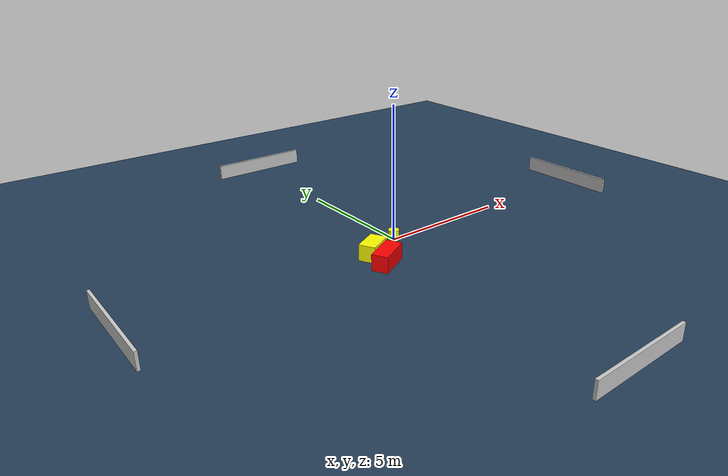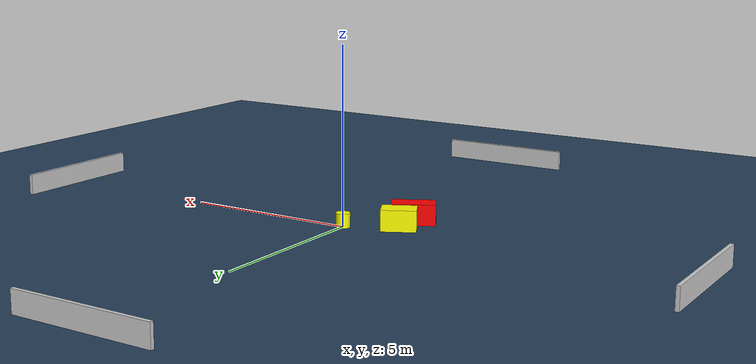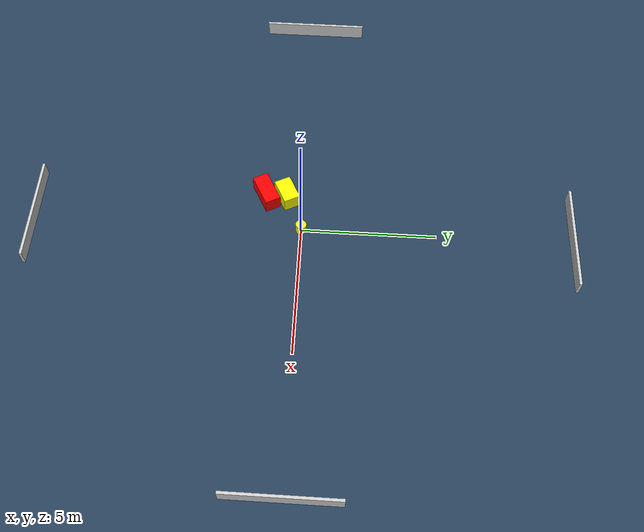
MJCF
<?xml version="1.0" ?>
<mujoco model="generated_environment">
  <option timestep="0.01" integrator="RK4" cone="elliptic"/>
  <default>
    <geom density="1"/>
  </default>
  <asset>
    <texture builtin="gradient" height="3072" name="skybox" rgb1="0.3 0.5 0.7" rgb2="0 0 0" type="skybox" width="512"/>
    <texture builtin="checker" height="300" name="groundplane" rgb1="0.2 0.3 0.4" rgb2="0.1 0.2 0.3" type="2d" width="300"/>
    <material name="groundplane" reflectance="0.2" texrepeat="5 5" texture="groundplane"/>
  </asset>
  <worldbody>
    <light dir="0 0 -1" directional="true" pos="0 0 1.5"/>
    <geom condim="3" friction="0.5 0.005 0.001" material="groundplane" name="floor" pos="0 0 0" size="0 0 0.05" type="plane"/>
    <body name="walls">
      <geom name="wall_1" condim="4" pos="-10.0 0.0 0.3" rgba="0.800000011920929 0.800000011920929 0.800000011920929 1.0" size="0.05 2.0 0.3" type="box"/>
      <geom name="wall_2" condim="4" pos="10.0 0.0 0.3" rgba="0.800000011920929 0.800000011920929 0.800000011920929 1.0" size="0.05 2.0 0.3" type="box"/>
      <geom name="wall_3" condim="4" pos="0.0 -10.0 0.3" rgba="0.800000011920929 0.800000011920929 0.800000011920929 1.0" size="2.0 0.05 0.3" type="box"/>
      <geom name="wall_4" condim="4" pos="0.0 10.0 0.3" rgba="0.800000011920929 0.800000011920929 0.800000011920929 1.0" size="2.0 0.05 0.3" type="box"/>
    </body>
    <body name="robot">
      <joint name="joint_x" type="slide" pos="0 0 0" axis="1 0 0"/>
      <joint name="joint_y" type="slide" pos="0 0 0" axis="0 1 0"/>
      <geom name="robot" type="cylinder" pos="0.0 0.0 0.2" size="0.2 0.2 0.0" mass="5.0" friction="1.0 0.005 0.0001" condim="4" rgba="1.0 1.0 0.0 1.0"/>
    </body>
    <body name="obstacle_1_movable">
      <geom name="obstacle_1_movable" condim="4" pos="-1.4140990233063446 -0.613318179472905 0.3" euler="0 0 117.05070181343196" friction="0.0 0.005 0.001" rgba="1.0 1.0 0.0 1.0" size="0.31024576392705744 0.48835589293265824 0.3" type="box" mass="0.1"/>
      <joint type="free"/>
    </body>
    <body name="obstacle_2_static">
      <geom name="obstacle_2_static" condim="4" pos="-1.422737788835839 -1.3915614191803167 0.3" euler="0 0 28.146628858596294" friction="0.0 0.005 0.001" rgba="1.0 0.0 0.0 1.0" size="0.6162516360180021 0.29567045821265797 0.3" type="box"/>
    </body>
  </worldbody>
  <actuator>
    <motor name="actuator_x" joint="joint_x" gear="1" ctrlrange="-1 1"/>
    <motor name="actuator_y" joint="joint_y" gear="1" ctrlrange="-1 1"/>
  </actuator>
</mujoco>
